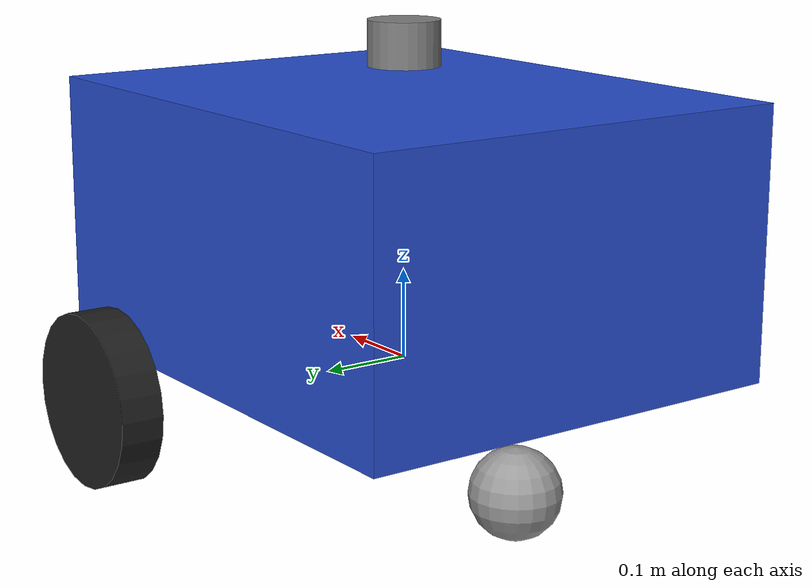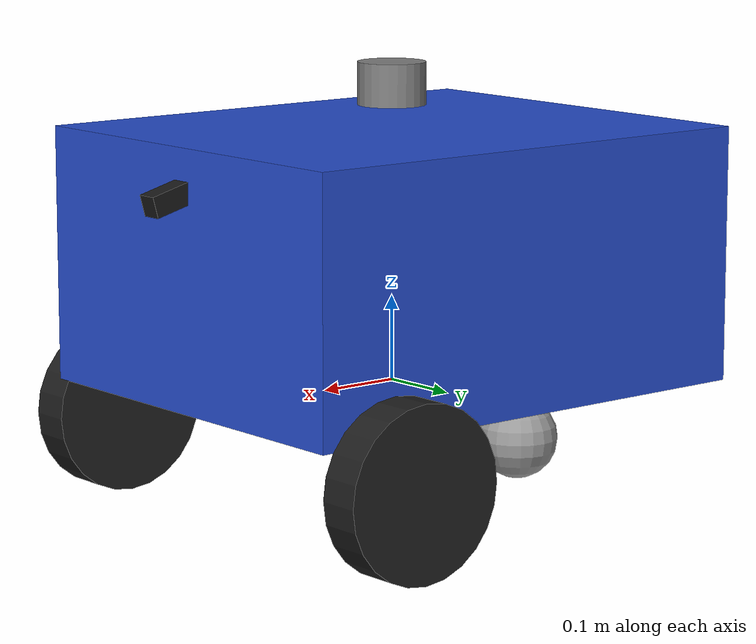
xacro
<?xml version="1.0"?>
<robot name="inspection_robot" xmlns:xacro="http://www.ros.org/wiki/xacro">

  <!-- 包含宏定义 -->
  <xacro:include filename="$(find deep_pit_simulation)/urdf/robot_base.xacro"/>
  <xacro:include filename="$(find deep_pit_simulation)/urdf/sensors.xacro"/>
  <xacro:include filename="$(find deep_pit_simulation)/urdf/materials.xacro"/>

  <!-- 创建底盘 -->
  <xacro:robot_base prefix=""/>

  <!-- 添加激光雷达 (顶部中央，高0.35m) -->
  <xacro:rplidar_a2
    prefix=""
    parent_link="base_link"
    xyz="0 0 0.35"
    rpy="0 0 0"/>

  <!-- 添加深度相机 (前部，前倾15°，高0.25m) -->
  <xacro:realsense_d435i
    prefix=""
    parent_link="base_link"
    xyz="0.3 0 0.25"
    rpy="0 ${15*pi/180} 0"/>

  <!-- 添加IMU (底盘中心，高0.15m) -->
  <xacro:bmi055_imu
    prefix=""
    parent_link="base_link"
    xyz="0 0 0.15"
    rpy="0 0 0"/>

  <!-- Gazebo全局属性 -->
  <gazebo>
    <static>false</static>
  </gazebo>

</robot>

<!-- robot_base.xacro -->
<robot xmlns:xacro="http://www.ros.org/wiki/xacro">

  <!-- ==================== 机器人底盘 ==================== -->
  <xacro:macro name="robot_base" params="prefix">

    <!-- ==================== 底盘主体 ==================== -->
    <link name="${prefix}base_link">
      <visual>
        <origin xyz="0 0 0.15" rpy="0 0 0"/>
        <geometry>
          <box size="0.6 0.5 0.3"/>
        </geometry>
        <material name="base_color"/>
      </visual>
      <collision>
        <origin xyz="0 0 0.15" rpy="0 0 0"/>
        <geometry>
          <box size="0.6 0.5 0.3"/>
        </geometry>
      </collision>
      <inertial>
        <origin xyz="0 0 0.15" rpy="0 0 0"/>
        <mass value="25.0"/>
        <inertia ixx="0.3125" iyy="0.4125" izz="0.6875" ixy="0" ixz="0" iyz="0"/>
      </inertial>
    </link>

    <!-- ==================== 左轮 ==================== -->
    <link name="${prefix}left_wheel">
      <visual>
        <origin xyz="0 0 0" rpy="${pi/2} 0 0"/>
        <geometry>
          <cylinder radius="0.1" length="0.05"/>
        </geometry>
        <material name="wheel_color"/>
      </visual>
      <collision>
        <origin xyz="0 0 0" rpy="${pi/2} 0 0"/>
        <geometry>
          <cylinder radius="0.1" length="0.05"/>
        </geometry>
      </collision>
      <inertial>
        <mass value="1.0"/>
        <inertia ixx="0.001525" iyy="0.001525" izz="0.005" ixy="0" ixz="0" iyz="0"/>
      </inertial>
    </link>

    <joint name="${prefix}left_wheel_joint" type="continuous">
      <parent link="${prefix}base_link"/>
      <child link="${prefix}left_wheel"/>
      <origin xyz="0.2 0.275 -0.05" rpy="0 0 0"/>
      <axis xyz="0 1 0"/>
    </joint>

    <!-- ==================== 右轮 ==================== -->
    <link name="${prefix}right_wheel">
      <visual>
        <origin xyz="0 0 0" rpy="${pi/2} 0 0"/>
        <geometry>
          <cylinder radius="0.1" length="0.05"/>
        </geometry>
        <material name="wheel_color"/>
      </visual>
      <collision>
        <origin xyz="0 0 0" rpy="${pi/2} 0 0"/>
        <geometry>
          <cylinder radius="0.1" length="0.05"/>
        </geometry>
      </collision>
      <inertial>
        <mass value="1.0"/>
        <inertia ixx="0.001525" iyy="0.001525" izz="0.005" ixy="0" ixz="0" iyz="0"/>
      </inertial>
    </link>

    <joint name="${prefix}right_wheel_joint" type="continuous">
      <parent link="${prefix}base_link"/>
      <child link="${prefix}right_wheel"/>
      <origin xyz="0.2 -0.275 -0.05" rpy="0 0 0"/>
      <axis xyz="0 1 0"/>
    </joint>

    <!-- ==================== 前后万向轮 ==================== -->
    <link name="${prefix}front_caster">
      <visual>
        <origin xyz="0 0 0" rpy="0 0 0"/>
        <geometry>
          <sphere radius="0.05"/>
        </geometry>
        <material name="caster_color"/>
      </visual>
      <collision>
        <geometry>
          <sphere radius="0.05"/>
        </geometry>
      </collision>
      <inertial>
        <mass value="0.5"/>
        <inertia ixx="0.00025" iyy="0.00025" izz="0.00025" ixy="0" ixz="0" iyz="0"/>
      </inertial>
    </link>

    <joint name="${prefix}front_caster_joint" type="fixed">
      <parent link="${prefix}base_link"/>
      <child link="${prefix}front_caster"/>
      <origin xyz="-0.2 0 -0.1" rpy="0 0 0"/>
    </joint>

    <link name="${prefix}back_caster">
      <visual>
        <origin xyz="0 0 0" rpy="0 0 0"/>
        <geometry>
          <sphere radius="0.05"/>
        </geometry>
        <material name="caster_color"/>
      </visual>
      <collision>
        <geometry>
          <sphere radius="0.05"/>
        </geometry>
      </collision>
      <inertial>
        <mass value="0.5"/>
        <inertia ixx="0.00025" iyy="0.00025" izz="0.00025" ixy="0" ixz="0" iyz="0"/>
      </inertial>
    </link>

    <joint name="${prefix}back_caster_joint" type="fixed">
      <parent link="${prefix}base_link"/>
      <child link="${prefix}back_caster"/>
      <origin xyz="-0.2 0 -0.1" rpy="0 0 0"/>
    </joint>

    <!-- ==================== Gazebo 差速驱动插件 ==================== -->
    <gazebo>
      <plugin name="gazebo_ros_diff_drive" filename="libgazebo_ros_diff_drive.so">
        <ros>
          <namespace>/robot</namespace>
        </ros>
        <update_rate>50</update_rate>
        <left_joint>${prefix}left_wheel_joint</left_joint>
        <right_joint>${prefix}right_wheel_joint</right_joint>
        <wheel_separation>0.55</wheel_separation>
        <wheel_diameter>0.2</wheel_diameter>
        <max_wheel_torque>20</max_wheel_torque>
        <max_wheel_acceleration>1.0</max_wheel_acceleration>
        <command_topic>cmd_vel</command_topic>
        <publish_wheel_tf>true</publish_wheel_tf>
        <publish_tf>true</publish_tf>
        <odometry_topic>odom</odometry_topic>
        <odometry_frame>odom</odometry_frame>
        <robot_base_frame>${prefix}base_link</robot_base_frame>
      </plugin>
    </gazebo>

  </xacro:macro>

</robot>

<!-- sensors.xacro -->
<robot xmlns:xacro="http://www.ros.org/wiki/xacro"
        xmlns:gazebo="http://gazebosim.org">

  <!-- 常量 -->
  <xacro:property name="pi" value="3.1415926535897931"/>

  <!-- ==================== 激光雷达 (RPLIDAR A2) ==================== -->
  <xacro:macro name="rplidar_a2" params="prefix parent_link xyz rpy">

    <link name="${prefix}lidar_link">
      <visual>
        <origin xyz="0 0 0" rpy="0 0 0"/>
        <geometry>
          <cylinder radius="0.04" length="0.05"/>
        </geometry>
        <material name="grey">
          <color rgba="0.5 0.5 0.5 1"/>
        </material>
      </visual>
      <collision>
        <geometry>
          <cylinder radius="0.04" length="0.05"/>
        </geometry>
      </collision>
      <inertial>
        <mass value="0.2"/>
        <inertia ixx="0.0001" iyy="0.0001" izz="0.0001" ixy="0" ixz="0" iyz="0"/>
      </inertial>
    </link>

    <joint name="${prefix}lidar_joint" type="fixed">
      <parent link="${parent_link}"/>
      <child link="${prefix}lidar_link"/>
      <origin xyz="${xyz}" rpy="${rpy}"/>
    </joint>

    <!-- Gazebo激光雷达插件 -->
    <gazebo reference="${prefix}lidar_link">
      <sensor type="ray" name="${prefix}lidar_sensor">
        <pose>0 0 0 0 0 0</pose>
        <visualize>true</visualize>
        <update_rate>10</update_rate>
        <ray>
          <scan>
            <horizontal>
              <samples>1440</samples>
              <resolution>1</resolution>
              <min_angle>${-pi}</min_angle>
              <max_angle>${pi}</max_angle>
            </horizontal>
          </scan>
          <range>
            <min>0.15</min>
            <max>12.0</max>
            <resolution>0.01</resolution>
          </range>
          <noise>
            <type>gaussian</type>
            <mean>0.0</mean>
            <stddev>0.01</stddev>
          </noise>
        </ray>
        <plugin name="${prefix}lidar_plugin" filename="libgazebo_ros_ray_sensor.so">
          <ros>
            <namespace>/robot</namespace>
            <remapping>~/out:=/scan</remapping>
          </ros>
          <frame_name>${prefix}lidar_link</frame_name>
        </plugin>
      </sensor>
    </gazebo>
  </xacro:macro>

  <!-- ==================== 深度相机 (RealSense D435i) ==================== -->
  <xacro:macro name="realsense_d435i" params="prefix parent_link xyz rpy">

    <link name="${prefix}camera_link">
      <visual>
        <origin xyz="0 0 0" rpy="0 0 0"/>
        <geometry>
          <box size="0.09 0.025 0.025"/>
        </geometry>
        <material name="black">
          <color rgba="0.1 0.1 0.1 1"/>
        </material>
      </visual>
      <collision>
        <geometry>
          <box size="0.09 0.025 0.025"/>
        </geometry>
      </collision>
      <inertial>
        <mass value="0.1"/>
        <inertia ixx="0.0001" iyy="0.0001" izz="0.0001" ixy="0" ixz="0" iyz="0"/>
      </inertial>
    </link>

    <joint name="${prefix}camera_joint" type="fixed">
      <parent link="${parent_link}"/>
      <child link="${prefix}camera_link"/>
      <origin xyz="${xyz}" rpy="${rpy}"/>
    </joint>

    <!-- RGB相机插件 -->
    <gazebo reference="${prefix}camera_link">
      <sensor type="camera" name="${prefix}rgb_camera">
        <update_rate>30</update_rate>
        <camera>
          <horizontal_fov>${60*pi/180}</horizontal_fov>
          <image>
            <width>640</width>
            <height>480</height>
            <format>R8G8B8</format>
          </image>
          <clip>
            <near>0.1</near>
            <far>100</far>
          </clip>
          <noise>
            <type>gaussian</type>
            <mean>0.0</mean>
            <stddev>0.007</stddev>
          </noise>
        </camera>
        <plugin name="${prefix}rgb_camera_plugin" filename="libgazebo_ros_camera.so">
          <ros>
            <namespace>/robot</namespace>
          </ros>
          <camera_name>camera</camera_name>
          <image_topic_name>rgb/image_raw</image_topic_name>
          <camera_info_topic_name>rgb/camera_info</camera_info_topic_name>
          <frame_name>${prefix}camera_link</frame_name>
        </plugin>
      </sensor>
    </gazebo>

    <!-- 深度相机插件 -->
    <gazebo reference="${prefix}camera_link">
      <sensor type="depth" name="${prefix}depth_camera">
        <update_rate>30</update_rate>
        <camera>
          <horizontal_fov>${60*pi/180}</horizontal_fov>
          <image>
            <width>640</width>
            <height>480</height>
            <format>R8G8B8</format>
          </image>
          <clip>
            <near>0.3</near>
            <far>5.0</far>
          </clip>
          <noise>
            <type>gaussian</type>
            <mean>0.0</mean>
            <stddev>0.02</stddev>
          </noise>
        </camera>
        <plugin name="${prefix}depth_plugin" filename="libgazebo_ros_depth_camera.so">
          <ros>
            <namespace>/robot</namespace>
          </ros>
          <camera_name>camera</camera_name>
          <depth_image_topic_name>depth/image_raw</depth_image_topic_name>
          <depth_camera_info_topic_name>depth/camera_info</depth_camera_info_topic_name>
          <point_cloud_topic_name>depth/points</point_cloud_topic_name>
          <frame_name>${prefix}camera_link</frame_name>
        </plugin>
      </sensor>
    </gazebo>
  </xacro:macro>

  <!-- ==================== IMU (BMI055) ==================== -->
  <xacro:macro name="bmi055_imu" params="prefix parent_link xyz rpy">

    <link name="${prefix}imu_link">
      <visual>
        <origin xyz="0 0 0" rpy="0 0 0"/>
        <geometry>
          <box size="0.02 0.02 0.01"/>
        </geometry>
        <material name="green">
          <color rgba="0.2 0.8 0.2 1"/>
        </material>
      </visual>
      <collision>
        <geometry>
          <box size="0.02 0.02 0.01"/>
        </geometry>
      </collision>
      <inertial>
        <mass value="0.01"/>
        <inertia ixx="0.00001" iyy="0.00001" izz="0.00001" ixy="0" ixz="0" iyz="0"/>
      </inertial>
    </link>

    <joint name="${prefix}imu_joint" type="fixed">
      <parent link="${parent_link}"/>
      <child link="${prefix}imu_link"/>
      <origin xyz="${xyz}" rpy="${rpy}"/>
    </joint>

    <!-- Gazebo IMU插件 -->
    <gazebo reference="${prefix}imu_link">
      <gravity>true</gravity>
      <sensor name="${prefix}imu_sensor" type="imu">
        <always_on>true</always_on>
        <update_rate>200</update_rate>
        <visualize>true</visualize>
        <plugin name="${prefix}imu_plugin" filename="libgazebo_ros_imu_sensor.so">
          <ros>
            <namespace>/robot</namespace>
            <remapping>~/out:=imu/data</remapping>
          </ros>
          <body_name>${prefix}imu_link</body_name>
          <update_rate_hz>200</update_rate_hz>
          <gaussian_noise>0.02</gaussian_noise>
          <xyz_offset>0 0 0</xyz_offset>
          <rpy_offset>0 0 0</rpy_offset>
          <frame_name>${prefix}imu_link</frame_name>
        </plugin>
        <pose>0 0 0 0 0 0</pose>
      </sensor>
    </gazebo>
  </xacro:macro>

</robot>
